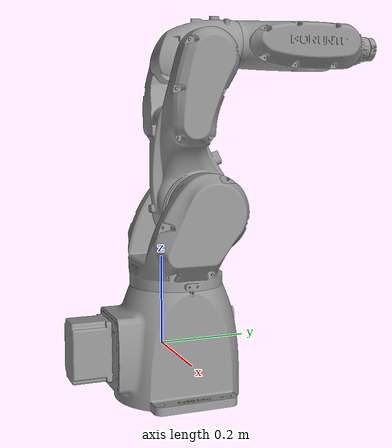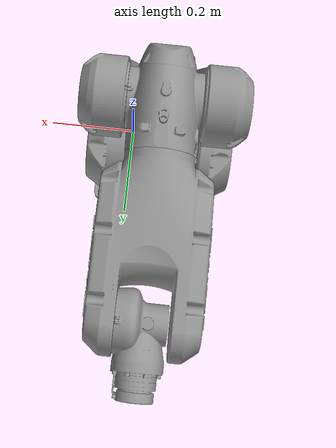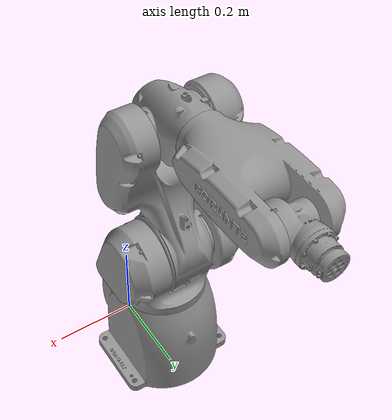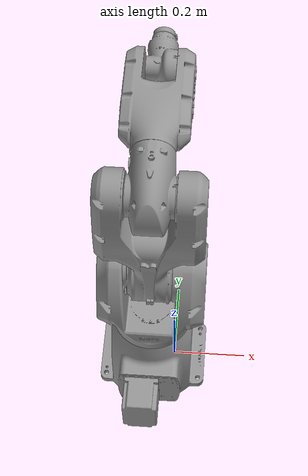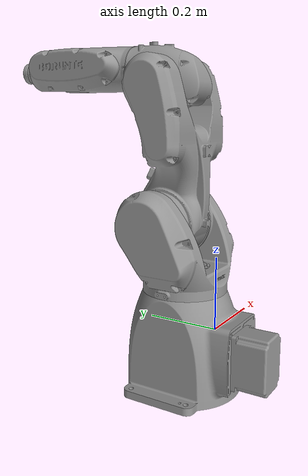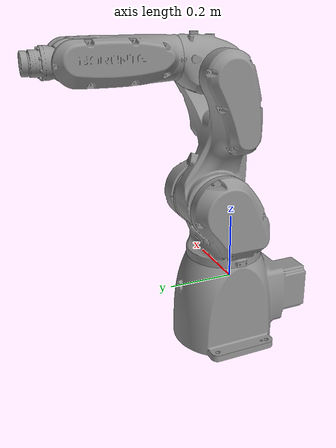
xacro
<?xml version="1.0"?>
<robot xmlns:xacro="http://www.ros.org/wiki/xacro" name="brtirus0707a">
  <xacro:arg name="initial_positions_file"
    default="$(find brtirus0707a_moveit_config)/config/initial_positions.yaml"/>
  <xacro:arg name="joint_commands_topic" default="/isaac_joint_commands"/>
  <xacro:arg name="joint_states_topic" default="/isaac_joint_states"/>

  <xacro:include filename="$(find brtirus0707a_description)/urdf/brtirus0707a.urdf.xacro"/>
  <xacro:include filename="$(find brtirus0707a_moveit_config)/config/brtirus0707a.ros2_control.xacro"/>

  <xacro:brtirus0707a_ros2_control
    name="brtirus0707a_system"
    initial_positions_file="$(arg initial_positions_file)"
    joint_commands_topic="$(arg joint_commands_topic)"
    joint_states_topic="$(arg joint_states_topic)"/>
</robot>

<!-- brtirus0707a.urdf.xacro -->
<robot xmlns:xacro="http://www.ros.org/wiki/xacro" name="brtirus0707a">

  <xacro:property name="effort_placeholder" value="100.0"/>
  <xacro:arg name="j1_origin_x" default="-0.064848"/>
  <xacro:arg name="j1_origin_y" default="0.0579775"/>
  <xacro:arg name="j1_origin_z" default="0.055131"/>
  <xacro:arg name="j1_axis_x" default="0"/>
  <xacro:arg name="j1_axis_y" default="0"/>
  <xacro:arg name="j1_axis_z" default="1"/>

  <xacro:property name="j1_origin_x_value" value="$(arg j1_origin_x)"/>
  <xacro:property name="j1_origin_y_value" value="$(arg j1_origin_y)"/>
  <xacro:property name="j1_origin_z_value" value="$(arg j1_origin_z)"/>
  <xacro:property name="j1_origin_delta_x" value="${float(j1_origin_x_value) + 0.129696}"/>
  <xacro:property name="j1_origin_delta_y" value="${float(j1_origin_y_value) - 0.115955}"/>
  <xacro:property name="j1_origin_delta_z" value="${float(j1_origin_z_value) - 0.055131}"/>

  <xacro:macro name="box_inertial" params="origin size_x size_y size_z mass">
    <inertial>
      <origin xyz="${origin}" rpy="0 0 0"/>
      <mass value="${mass}"/>
      <inertia
        ixx="${mass * (size_y * size_y + size_z * size_z) / 12.0}"
        ixy="0.0"
        ixz="0.0"
        iyy="${mass * (size_x * size_x + size_z * size_z) / 12.0}"
        iyz="0.0"
        izz="${mass * (size_x * size_x + size_y * size_y) / 12.0}"/>
    </inertial>
  </xacro:macro>

  <xacro:macro name="autodesk_mesh" params="link mesh visual_origin collision_origin collision_size inertial_origin inertial_size inertial_mass">
    <link name="${link}">
      <xacro:property name="inertial_size_parts" value="${inertial_size.split()}"/>
      <xacro:box_inertial
        origin="${inertial_origin}"
        size_x="${float(inertial_size_parts[0])}"
        size_y="${float(inertial_size_parts[1])}"
        size_z="${float(inertial_size_parts[2])}"
        mass="${inertial_mass}"/>
      <visual>
        <origin xyz="${visual_origin}" rpy="0 0 0"/>
        <geometry>
          <mesh filename="package://brtirus0707a_description/meshes/autodesk/${mesh}" scale="0.001 0.001 0.001"/>
        </geometry>
        <material name="brtirus0707a_autodesk_silver">
          <color rgba="0.58 0.58 0.58 1.0"/>
        </material>
      </visual>
      <collision>
        <origin xyz="${visual_origin}" rpy="0 0 0"/>
        <geometry>
          <mesh filename="package://brtirus0707a_description/meshes/autodesk/${mesh}" scale="0.001 0.001 0.001"/>
        </geometry>
      </collision>
    </link>
  </xacro:macro>

  <link name="brtirus0707a_root"/>

  <xacro:autodesk_mesh
    link="brtirus0707a_base_link"
    mesh="base_link.stl"
    visual_origin="0 0 0"
    collision_origin="-0.064848 0.004976 0.000065"
    collision_size="0.304000 0.405997 0.285500"
    inertial_origin="-0.065241 0.027842 -0.020707"
    inertial_size="0.304000 0.405997 0.285500"
    inertial_mass="21.141968"/>
  <xacro:autodesk_mesh
    link="brtirus0707a_link_1"
    mesh="j1_1.stl"
    visual_origin="${0.129696 - j1_origin_delta_x} ${-0.115955 - j1_origin_delta_y} ${-0.055131 - j1_origin_delta_z}"
    collision_origin="${0.064848 - j1_origin_delta_x} ${-0.042310 - j1_origin_delta_y} ${0.198352 - j1_origin_delta_z}"
    collision_size="0.290000 0.251336 0.269335"
    inertial_origin="${0.075143256588067 - j1_origin_delta_x} ${-0.04295023356492826 - j1_origin_delta_y} ${0.16978602448943608 - j1_origin_delta_z}"
    inertial_size="0.290000 0.251336 0.269335"
    inertial_mass="10.289354"/>
  <xacro:autodesk_mesh
    link="brtirus0707a_link_2"
    mesh="j2_1.stl"
    visual_origin="0.007848 -0.107971 -0.296453"
    collision_origin="-0.056000 -0.011852 0.162046"
    collision_size="0.279000 0.203497 0.510985"
    inertial_origin="-0.055485 -0.021073 0.147975"
    inertial_size="0.279000 0.203497 0.510985"
    inertial_mass="13.218509"/>
  <xacro:autodesk_mesh
    link="brtirus0707a_link_3"
    mesh="j3_1.stl"
    visual_origin="0.001348 -0.104370 -0.646495"
    collision_origin="-0.061500 0.001697 0.025500"
    collision_size="0.123000 0.198606 0.157000"
    inertial_origin="-0.059655 0.003808 -0.004257"
    inertial_size="0.123000 0.198606 0.157000"
    inertial_mass="3.271009"/>
  <xacro:autodesk_mesh
    link="brtirus0707a_link_4"
    mesh="j4_1.stl"
    visual_origin="0.064294 -0.205370 -0.687420"
    collision_origin="0 0.158316 0"
    collision_size="0.182000 0.316630 0.115862"
    inertial_origin="-0.005245 0.126718 -0.026103"
    inertial_size="0.182000 0.316630 0.115862"
    inertial_mass="5.919433"/>
  <xacro:autodesk_mesh
    link="brtirus0707a_link_5"
    mesh="j5_1.stl"
    visual_origin="0.021794 -0.467370 -0.687420"
    collision_origin="-0.040250 0.024876 0.000274"
    collision_size="0.080500 0.152849 0.103108"
    inertial_origin="-0.032506 -0.016097 -0.048703"
    inertial_size="0.080500 0.152849 0.103108"
    inertial_mass="1.136383"/>
  <xacro:autodesk_mesh
    link="brtirus0707a_link_6"
    mesh="j6_1.stl"
    visual_origin="0.062794 -0.568670 -0.687694"
    collision_origin="0.002504 0.006000 0"
    collision_size="0.062992 0.018000 0.057994"
    inertial_origin="-0.010392 0.118346 0.128027"
    inertial_size="0.062992 0.018000 0.057994"
    inertial_mass="0.023344"/>

  <link name="brtirus0707a_tool0">
    <xacro:box_inertial origin="0 0 0" size_x="0.001" size_y="0.001" size_z="0.001" mass="0.001"/>
  </link>

  <!-- Autodesk Revolute 6: base_link -> j1_1 -->
  <joint name="brtirus0707a_root_to_base" type="fixed">
    <origin xyz="0 0 0" rpy="0 0 0"/>
    <parent link="brtirus0707a_root"/>
    <child link="brtirus0707a_base_link"/>
  </joint>

  <joint name="brtirus0707a_joint_1" type="revolute">
    <origin xyz="$(arg j1_origin_x) $(arg j1_origin_y) $(arg j1_origin_z)" rpy="0 0 0"/>
    <parent link="brtirus0707a_base_link"/>
    <child link="brtirus0707a_link_1"/>
    <axis xyz="$(arg j1_axis_x) $(arg j1_axis_y) $(arg j1_axis_z)"/>
    <limit lower="-3.036873" upper="3.036873" effort="${effort_placeholder}" velocity="3.853"/>
  </joint>

  <!-- Autodesk Revolute 5: j1_1 -> j2_1 -->
  <joint name="brtirus0707a_joint_2" type="revolute">
    <origin xyz="${0.121848 - j1_origin_delta_x} ${-0.007984 - j1_origin_delta_y} ${0.241322 - j1_origin_delta_z}" rpy="0 0 0"/>
    <parent link="brtirus0707a_link_1"/>
    <child link="brtirus0707a_link_2"/>
    <axis xyz="-1 0 0"/>
    <limit lower="-1.483530" upper="2.181662" effort="${effort_placeholder}" velocity="4.712"/>
  </joint>

  <!-- Autodesk Revolute 4: j2_1 -> j3_1 -->
  <joint name="brtirus0707a_joint_3" type="revolute">
    <origin xyz="0.0065 -0.003601 0.350042" rpy="0 0 0"/>
    <parent link="brtirus0707a_link_2"/>
    <child link="brtirus0707a_link_3"/>
    <axis xyz="-1 0 0"/>
    <limit lower="-3.054326" upper="1.047198" effort="${effort_placeholder}" velocity="6.545"/>
  </joint>

  <!-- Autodesk Revolute 3: j3_1 -> j4_1 -->
  <joint name="brtirus0707a_joint_4" type="revolute">
    <origin xyz="-0.062946 0.101 0.040925" rpy="0 0 0"/>
    <parent link="brtirus0707a_link_3"/>
    <child link="brtirus0707a_link_4"/>
    <axis xyz="0 1 0"/>
    <limit lower="-3.141593" upper="3.141593" effort="${effort_placeholder}" velocity="5.376"/>
  </joint>

  <!-- Autodesk Revolute 2: j4_1 -> j5_1 -->
  <joint name="brtirus0707a_joint_5" type="revolute">
    <origin xyz="0.0425 0.262 0" rpy="0 0 0"/>
    <parent link="brtirus0707a_link_4"/>
    <child link="brtirus0707a_link_5"/>
    <axis xyz="-1 0 0"/>
    <limit lower="-2.094395" upper="2.094395" effort="${effort_placeholder}" velocity="5.236"/>
  </joint>

  <!-- Autodesk Revolute 1: j5_1 -> j6_1 -->
  <joint name="brtirus0707a_joint_6" type="revolute">
    <origin xyz="-0.041 0.1013 0.000274" rpy="0 0 0"/>
    <parent link="brtirus0707a_link_5"/>
    <child link="brtirus0707a_link_6"/>
    <axis xyz="0 -1 0"/>
    <limit lower="-6.283185" upper="6.283185" effort="${effort_placeholder}" velocity="5.969"/>
  </joint>

  <joint name="brtirus0707a_tool0_fixed" type="fixed">
    <origin xyz="0 0 0" rpy="0 0 0"/>
    <parent link="brtirus0707a_link_6"/>
    <child link="brtirus0707a_tool0"/>
  </joint>
</robot>
